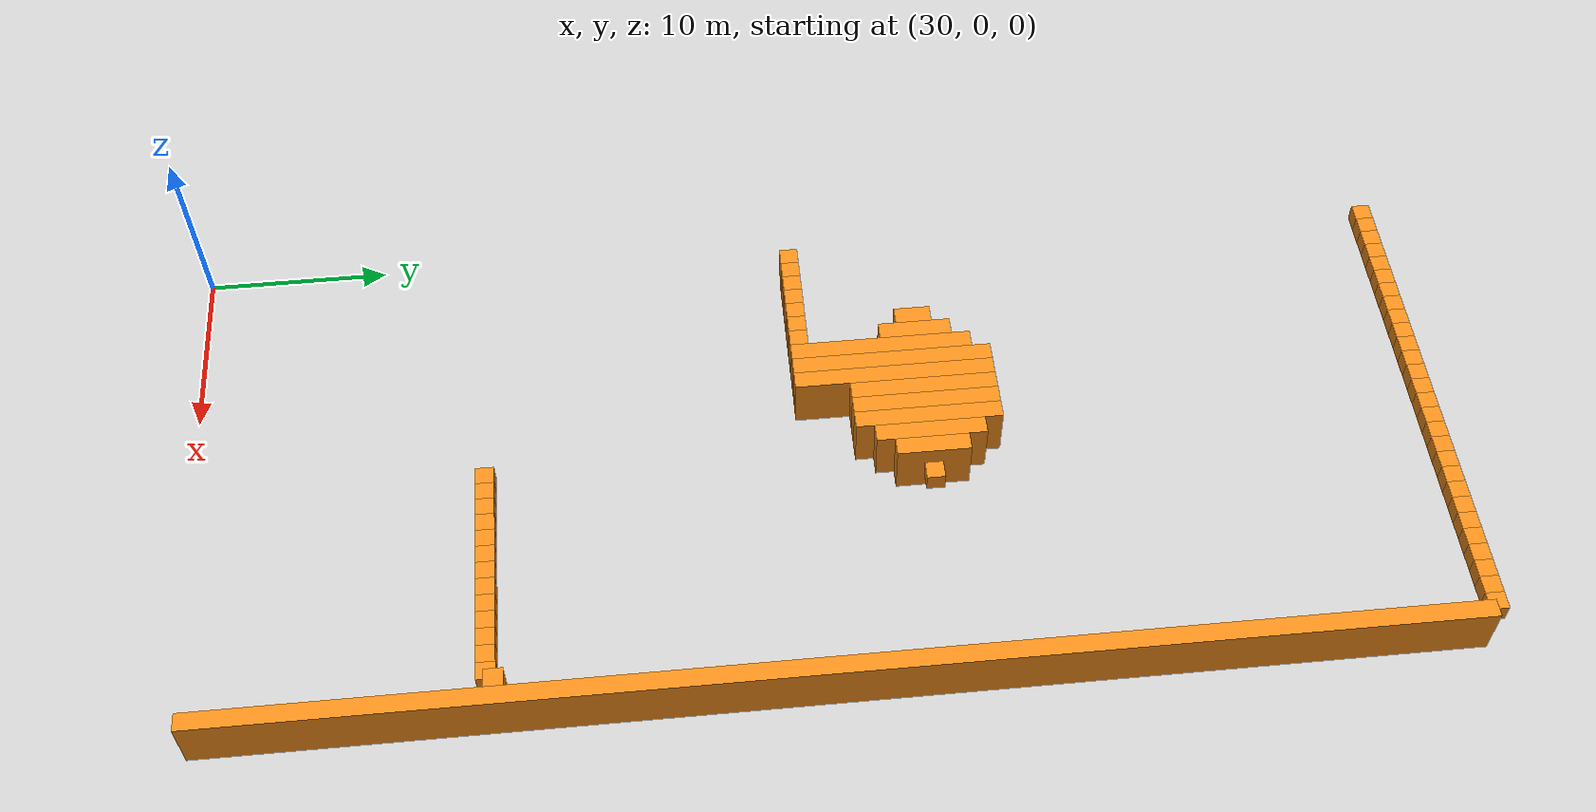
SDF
<sdf version="1.6">
 <world name="default">
  <include><uri>model://ground_plane</uri></include>
  <model name="unit_box_091">
   <pose>32.50    67.50     1.50 0 0 0</pose>
   <static>1</static>
   <link name="link">
    <inertial>
     <mass>5000</mass>
     <inertia><ixx>200</ixx><ixy>0</ixy><ixz>0</ixz><iyy>200</iyy><iyz>0</iyz><izz>200</izz></inertia>
    </inertial>
    <collision name="collision"><geometry><box><size>1 1 1</size></box></geometry></collision>
    <visual name="visual">
     <geometry><box><size>1 1 1</size></box></geometry>
     <material>
      <script><name>Gazebo/Orange</name><uri>file://media/materials/scripts/gazebo.material</uri></script>
     </material>
    </visual>
   </link>
  </model>
  <model name="unit_box_093">
   <pose>33.50    33.50     1.50 0 0 0</pose>
   <static>1</static>
   <link name="link">
    <inertial>
     <mass>5000</mass>
     <inertia><ixx>200</ixx><ixy>0</ixy><ixz>0</ixz><iyy>200</iyy><iyz>0</iyz><izz>200</izz></inertia>
    </inertial>
    <collision name="collision"><geometry><box><size>1 1 3</size></box></geometry></collision>
    <visual name="visual">
     <geometry><box><size>1 1 3</size></box></geometry>
     <material>
      <script><name>Gazebo/Orange</name><uri>file://media/materials/scripts/gazebo.material</uri></script>
     </material>
    </visual>
   </link>
  </model>
  <model name="unit_box_094">
   <pose>33.50    67.50     1.50 0 0 0</pose>
   <static>1</static>
   <link name="link">
    <inertial>
     <mass>5000</mass>
     <inertia><ixx>200</ixx><ixy>0</ixy><ixz>0</ixz><iyy>200</iyy><iyz>0</iyz><izz>200</izz></inertia>
    </inertial>
    <collision name="collision"><geometry><box><size>1 1 1</size></box></geometry></collision>
    <visual name="visual">
     <geometry><box><size>1 1 1</size></box></geometry>
     <material>
      <script><name>Gazebo/Orange</name><uri>file://media/materials/scripts/gazebo.material</uri></script>
     </material>
    </visual>
   </link>
  </model>
  <model name="unit_box_096">
   <pose>34.50    33.50     1.50 0 0 0</pose>
   <static>1</static>
   <link name="link">
    <inertial>
     <mass>5000</mass>
     <inertia><ixx>200</ixx><ixy>0</ixy><ixz>0</ixz><iyy>200</iyy><iyz>0</iyz><izz>200</izz></inertia>
    </inertial>
    <collision name="collision"><geometry><box><size>1 1 3</size></box></geometry></collision>
    <visual name="visual">
     <geometry><box><size>1 1 3</size></box></geometry>
     <material>
      <script><name>Gazebo/Orange</name><uri>file://media/materials/scripts/gazebo.material</uri></script>
     </material>
    </visual>
   </link>
  </model>
  <model name="unit_box_097">
   <pose>34.50    67.50     1.50 0 0 0</pose>
   <static>1</static>
   <link name="link">
    <inertial>
     <mass>5000</mass>
     <inertia><ixx>200</ixx><ixy>0</ixy><ixz>0</ixz><iyy>200</iyy><iyz>0</iyz><izz>200</izz></inertia>
    </inertial>
    <collision name="collision"><geometry><box><size>1 1 1</size></box></geometry></collision>
    <visual name="visual">
     <geometry><box><size>1 1 1</size></box></geometry>
     <material>
      <script><name>Gazebo/Orange</name><uri>file://media/materials/scripts/gazebo.material</uri></script>
     </material>
    </visual>
   </link>
  </model>
  <model name="unit_box_099">
   <pose>35.50    33.50     1.50 0 0 0</pose>
   <static>1</static>
   <link name="link">
    <inertial>
     <mass>5000</mass>
     <inertia><ixx>200</ixx><ixy>0</ixy><ixz>0</ixz><iyy>200</iyy><iyz>0</iyz><izz>200</izz></inertia>
    </inertial>
    <collision name="collision"><geometry><box><size>1 1 3</size></box></geometry></collision>
    <visual name="visual">
     <geometry><box><size>1 1 3</size></box></geometry>
     <material>
      <script><name>Gazebo/Orange</name><uri>file://media/materials/scripts/gazebo.material</uri></script>
     </material>
    </visual>
   </link>
  </model>
  <model name="unit_box_100">
   <pose>35.50    67.50     1.50 0 0 0</pose>
   <static>1</static>
   <link name="link">
    <inertial>
     <mass>5000</mass>
     <inertia><ixx>200</ixx><ixy>0</ixy><ixz>0</ixz><iyy>200</iyy><iyz>0</iyz><izz>200</izz></inertia>
    </inertial>
    <collision name="collision"><geometry><box><size>1 1 1</size></box></geometry></collision>
    <visual name="visual">
     <geometry><box><size>1 1 1</size></box></geometry>
     <material>
      <script><name>Gazebo/Orange</name><uri>file://media/materials/scripts/gazebo.material</uri></script>
     </material>
    </visual>
   </link>
  </model>
  <model name="unit_box_102">
   <pose>36.50    33.50     1.50 0 0 0</pose>
   <static>1</static>
   <link name="link">
    <inertial>
     <mass>5000</mass>
     <inertia><ixx>200</ixx><ixy>0</ixy><ixz>0</ixz><iyy>200</iyy><iyz>0</iyz><izz>200</izz></inertia>
    </inertial>
    <collision name="collision"><geometry><box><size>1 1 3</size></box></geometry></collision>
    <visual name="visual">
     <geometry><box><size>1 1 3</size></box></geometry>
     <material>
      <script><name>Gazebo/Orange</name><uri>file://media/materials/scripts/gazebo.material</uri></script>
     </material>
    </visual>
   </link>
  </model>
  <model name="unit_box_103">
   <pose>36.50    67.50     1.50 0 0 0</pose>
   <static>1</static>
   <link name="link">
    <inertial>
     <mass>5000</mass>
     <inertia><ixx>200</ixx><ixy>0</ixy><ixz>0</ixz><iyy>200</iyy><iyz>0</iyz><izz>200</izz></inertia>
    </inertial>
    <collision name="collision"><geometry><box><size>1 1 1</size></box></geometry></collision>
    <visual name="visual">
     <geometry><box><size>1 1 1</size></box></geometry>
     <material>
      <script><name>Gazebo/Orange</name><uri>file://media/materials/scripts/gazebo.material</uri></script>
     </material>
    </visual>
   </link>
  </model>
  <model name="unit_box_105">
   <pose>37.50    33.50     1.50 0 0 0</pose>
   <static>1</static>
   <link name="link">
    <inertial>
     <mass>5000</mass>
     <inertia><ixx>200</ixx><ixy>0</ixy><ixz>0</ixz><iyy>200</iyy><iyz>0</iyz><izz>200</izz></inertia>
    </inertial>
    <collision name="collision"><geometry><box><size>1 1 3</size></box></geometry></collision>
    <visual name="visual">
     <geometry><box><size>1 1 3</size></box></geometry>
     <material>
      <script><name>Gazebo/Orange</name><uri>file://media/materials/scripts/gazebo.material</uri></script>
     </material>
    </visual>
   </link>
  </model>
  <model name="unit_box_106">
   <pose>37.50    67.50     1.50 0 0 0</pose>
   <static>1</static>
   <link name="link">
    <inertial>
     <mass>5000</mass>
     <inertia><ixx>200</ixx><ixy>0</ixy><ixz>0</ixz><iyy>200</iyy><iyz>0</iyz><izz>200</izz></inertia>
    </inertial>
    <collision name="collision"><geometry><box><size>1 1 1</size></box></geometry></collision>
    <visual name="visual">
     <geometry><box><size>1 1 1</size></box></geometry>
     <material>
      <script><name>Gazebo/Orange</name><uri>file://media/materials/scripts/gazebo.material</uri></script>
     </material>
    </visual>
   </link>
  </model>
  <model name="unit_box_108">
   <pose>38.50    33.50     1.50 0 0 0</pose>
   <static>1</static>
   <link name="link">
    <inertial>
     <mass>5000</mass>
     <inertia><ixx>200</ixx><ixy>0</ixy><ixz>0</ixz><iyy>200</iyy><iyz>0</iyz><izz>200</izz></inertia>
    </inertial>
    <collision name="collision"><geometry><box><size>1 1 3</size></box></geometry></collision>
    <visual name="visual">
     <geometry><box><size>1 1 3</size></box></geometry>
     <material>
      <script><name>Gazebo/Orange</name><uri>file://media/materials/scripts/gazebo.material</uri></script>
     </material>
    </visual>
   </link>
  </model>
  <model name="unit_box_109">
   <pose>38.50    40.00     1.50 0 0 0</pose>
   <static>1</static>
   <link name="link">
    <inertial>
     <mass>5000</mass>
     <inertia><ixx>200</ixx><ixy>0</ixy><ixz>0</ixz><iyy>200</iyy><iyz>0</iyz><izz>200</izz></inertia>
    </inertial>
    <collision name="collision"><geometry><box><size>1 2 3</size></box></geometry></collision>
    <visual name="visual">
     <geometry><box><size>1 2 3</size></box></geometry>
     <material>
      <script><name>Gazebo/Orange</name><uri>file://media/materials/scripts/gazebo.material</uri></script>
     </material>
    </visual>
   </link>
  </model>
  <model name="unit_box_110">
   <pose>38.50    67.50     1.50 0 0 0</pose>
   <static>1</static>
   <link name="link">
    <inertial>
     <mass>5000</mass>
     <inertia><ixx>200</ixx><ixy>0</ixy><ixz>0</ixz><iyy>200</iyy><iyz>0</iyz><izz>200</izz></inertia>
    </inertial>
    <collision name="collision"><geometry><box><size>1 1 1</size></box></geometry></collision>
    <visual name="visual">
     <geometry><box><size>1 1 1</size></box></geometry>
     <material>
      <script><name>Gazebo/Orange</name><uri>file://media/materials/scripts/gazebo.material</uri></script>
     </material>
    </visual>
   </link>
  </model>
  <model name="unit_box_112">
   <pose>39.50    33.50     1.50 0 0 0</pose>
   <static>1</static>
   <link name="link">
    <inertial>
     <mass>5000</mass>
     <inertia><ixx>200</ixx><ixy>0</ixy><ixz>0</ixz><iyy>200</iyy><iyz>0</iyz><izz>200</izz></inertia>
    </inertial>
    <collision name="collision"><geometry><box><size>1 1 3</size></box></geometry></collision>
    <visual name="visual">
     <geometry><box><size>1 1 3</size></box></geometry>
     <material>
      <script><name>Gazebo/Orange</name><uri>file://media/materials/scripts/gazebo.material</uri></script>
     </material>
    </visual>
   </link>
  </model>
  <model name="unit_box_113">
   <pose>39.50    40.00     1.50 0 0 0</pose>
   <static>1</static>
   <link name="link">
    <inertial>
     <mass>5000</mass>
     <inertia><ixx>200</ixx><ixy>0</ixy><ixz>0</ixz><iyy>200</iyy><iyz>0</iyz><izz>200</izz></inertia>
    </inertial>
    <collision name="collision"><geometry><box><size>1 4 3</size></box></geometry></collision>
    <visual name="visual">
     <geometry><box><size>1 4 3</size></box></geometry>
     <material>
      <script><name>Gazebo/Orange</name><uri>file://media/materials/scripts/gazebo.material</uri></script>
     </material>
    </visual>
   </link>
  </model>
  <model name="unit_box_114">
   <pose>39.50    67.50     1.50 0 0 0</pose>
   <static>1</static>
   <link name="link">
    <inertial>
     <mass>5000</mass>
     <inertia><ixx>200</ixx><ixy>0</ixy><ixz>0</ixz><iyy>200</iyy><iyz>0</iyz><izz>200</izz></inertia>
    </inertial>
    <collision name="collision"><geometry><box><size>1 1 1</size></box></geometry></collision>
    <visual name="visual">
     <geometry><box><size>1 1 1</size></box></geometry>
     <material>
      <script><name>Gazebo/Orange</name><uri>file://media/materials/scripts/gazebo.material</uri></script>
     </material>
    </visual>
   </link>
  </model>
  <model name="unit_box_116">
   <pose>40.50    38.00     1.50 0 0 0</pose>
   <static>1</static>
   <link name="link">
    <inertial>
     <mass>5000</mass>
     <inertia><ixx>200</ixx><ixy>0</ixy><ixz>0</ixz><iyy>200</iyy><iyz>0</iyz><izz>200</izz></inertia>
    </inertial>
    <collision name="collision"><geometry><box><size>1 10 3</size></box></geometry></collision>
    <visual name="visual">
     <geometry><box><size>1 10 3</size></box></geometry>
     <material>
      <script><name>Gazebo/Orange</name><uri>file://media/materials/scripts/gazebo.material</uri></script>
     </material>
    </visual>
   </link>
  </model>
  <model name="unit_box_117">
   <pose>40.50    67.50     1.50 0 0 0</pose>
   <static>1</static>
   <link name="link">
    <inertial>
     <mass>5000</mass>
     <inertia><ixx>200</ixx><ixy>0</ixy><ixz>0</ixz><iyy>200</iyy><iyz>0</iyz><izz>200</izz></inertia>
    </inertial>
    <collision name="collision"><geometry><box><size>1 1 1</size></box></geometry></collision>
    <visual name="visual">
     <geometry><box><size>1 1 1</size></box></geometry>
     <material>
      <script><name>Gazebo/Orange</name><uri>file://media/materials/scripts/gazebo.material</uri></script>
     </material>
    </visual>
   </link>
  </model>
  <model name="unit_box_119">
   <pose>41.50    38.50     1.50 0 0 0</pose>
   <static>1</static>
   <link name="link">
    <inertial>
     <mass>5000</mass>
     <inertia><ixx>200</ixx><ixy>0</ixy><ixz>0</ixz><iyy>200</iyy><iyz>0</iyz><izz>200</izz></inertia>
    </inertial>
    <collision name="collision"><geometry><box><size>1 11 3</size></box></geometry></collision>
    <visual name="visual">
     <geometry><box><size>1 11 3</size></box></geometry>
     <material>
      <script><name>Gazebo/Orange</name><uri>file://media/materials/scripts/gazebo.material</uri></script>
     </material>
    </visual>
   </link>
  </model>
  <model name="unit_box_120">
   <pose>41.50    67.50     1.50 0 0 0</pose>
   <static>1</static>
   <link name="link">
    <inertial>
     <mass>5000</mass>
     <inertia><ixx>200</ixx><ixy>0</ixy><ixz>0</ixz><iyy>200</iyy><iyz>0</iyz><izz>200</izz></inertia>
    </inertial>
    <collision name="collision"><geometry><box><size>1 1 1</size></box></geometry></collision>
    <visual name="visual">
     <geometry><box><size>1 1 1</size></box></geometry>
     <material>
      <script><name>Gazebo/Orange</name><uri>file://media/materials/scripts/gazebo.material</uri></script>
     </material>
    </visual>
   </link>
  </model>
  <model name="unit_box_123">
   <pose>42.50    38.50     1.50 0 0 0</pose>
   <static>1</static>
   <link name="link">
    <inertial>
     <mass>5000</mass>
     <inertia><ixx>200</ixx><ixy>0</ixy><ixz>0</ixz><iyy>200</iyy><iyz>0</iyz><izz>200</izz></inertia>
    </inertial>
    <collision name="collision"><geometry><box><size>1 11 3</size></box></geometry></collision>
    <visual name="visual">
     <geometry><box><size>1 11 3</size></box></geometry>
     <material>
      <script><name>Gazebo/Orange</name><uri>file://media/materials/scripts/gazebo.material</uri></script>
     </material>
    </visual>
   </link>
  </model>
  <model name="unit_box_124">
   <pose>42.50    67.50     1.50 0 0 0</pose>
   <static>1</static>
   <link name="link">
    <inertial>
     <mass>5000</mass>
     <inertia><ixx>200</ixx><ixy>0</ixy><ixz>0</ixz><iyy>200</iyy><iyz>0</iyz><izz>200</izz></inertia>
    </inertial>
    <collision name="collision"><geometry><box><size>1 1 1</size></box></geometry></collision>
    <visual name="visual">
     <geometry><box><size>1 1 1</size></box></geometry>
     <material>
      <script><name>Gazebo/Orange</name><uri>file://media/materials/scripts/gazebo.material</uri></script>
     </material>
    </visual>
   </link>
  </model>
  <model name="unit_box_127">
   <pose>43.50    40.00     1.50 0 0 0</pose>
   <static>1</static>
   <link name="link">
    <inertial>
     <mass>5000</mass>
     <inertia><ixx>200</ixx><ixy>0</ixy><ixz>0</ixz><iyy>200</iyy><iyz>0</iyz><izz>200</izz></inertia>
    </inertial>
    <collision name="collision"><geometry><box><size>1 8 3</size></box></geometry></collision>
    <visual name="visual">
     <geometry><box><size>1 8 3</size></box></geometry>
     <material>
      <script><name>Gazebo/Orange</name><uri>file://media/materials/scripts/gazebo.material</uri></script>
     </material>
    </visual>
   </link>
  </model>
  <model name="unit_box_128">
   <pose>43.50    67.50     1.50 0 0 0</pose>
   <static>1</static>
   <link name="link">
    <inertial>
     <mass>5000</mass>
     <inertia><ixx>200</ixx><ixy>0</ixy><ixz>0</ixz><iyy>200</iyy><iyz>0</iyz><izz>200</izz></inertia>
    </inertial>
    <collision name="collision"><geometry><box><size>1 1 1</size></box></geometry></collision>
    <visual name="visual">
     <geometry><box><size>1 1 1</size></box></geometry>
     <material>
      <script><name>Gazebo/Orange</name><uri>file://media/materials/scripts/gazebo.material</uri></script>
     </material>
    </visual>
   </link>
  </model>
  <model name="unit_box_131">
   <pose>44.50    40.00     1.50 0 0 0</pose>
   <static>1</static>
   <link name="link">
    <inertial>
     <mass>5000</mass>
     <inertia><ixx>200</ixx><ixy>0</ixy><ixz>0</ixz><iyy>200</iyy><iyz>0</iyz><izz>200</izz></inertia>
    </inertial>
    <collision name="collision"><geometry><box><size>1 8 3</size></box></geometry></collision>
    <visual name="visual">
     <geometry><box><size>1 8 3</size></box></geometry>
     <material>
      <script><name>Gazebo/Orange</name><uri>file://media/materials/scripts/gazebo.material</uri></script>
     </material>
    </visual>
   </link>
  </model>
  <model name="unit_box_132">
   <pose>44.50    67.50     1.50 0 0 0</pose>
   <static>1</static>
   <link name="link">
    <inertial>
     <mass>5000</mass>
     <inertia><ixx>200</ixx><ixy>0</ixy><ixz>0</ixz><iyy>200</iyy><iyz>0</iyz><izz>200</izz></inertia>
    </inertial>
    <collision name="collision"><geometry><box><size>1 1 1</size></box></geometry></collision>
    <visual name="visual">
     <geometry><box><size>1 1 1</size></box></geometry>
     <material>
      <script><name>Gazebo/Orange</name><uri>file://media/materials/scripts/gazebo.material</uri></script>
     </material>
    </visual>
   </link>
  </model>
  <model name="unit_box_135">
   <pose>45.50    40.00     1.50 0 0 0</pose>
   <static>1</static>
   <link name="link">
    <inertial>
     <mass>5000</mass>
     <inertia><ixx>200</ixx><ixy>0</ixy><ixz>0</ixz><iyy>200</iyy><iyz>0</iyz><izz>200</izz></inertia>
    </inertial>
    <collision name="collision"><geometry><box><size>1 8 3</size></box></geometry></collision>
    <visual name="visual">
     <geometry><box><size>1 8 3</size></box></geometry>
     <material>
      <script><name>Gazebo/Orange</name><uri>file://media/materials/scripts/gazebo.material</uri></script>
     </material>
    </visual>
   </link>
  </model>
  <model name="unit_box_136">
   <pose>45.50    67.50     1.50 0 0 0</pose>
   <static>1</static>
   <link name="link">
    <inertial>
     <mass>5000</mass>
     <inertia><ixx>200</ixx><ixy>0</ixy><ixz>0</ixz><iyy>200</iyy><iyz>0</iyz><izz>200</izz></inertia>
    </inertial>
    <collision name="collision"><geometry><box><size>1 1 1</size></box></geometry></collision>
    <visual name="visual">
     <geometry><box><size>1 1 1</size></box></geometry>
     <material>
      <script><name>Gazebo/Orange</name><uri>file://media/materials/scripts/gazebo.material</uri></script>
     </material>
    </visual>
   </link>
  </model>
  <model name="unit_box_138">
   <pose>46.50    16.00     1.50 0 0 0</pose>
   <static>1</static>
   <link name="link">
    <inertial>
     <mass>5000</mass>
     <inertia><ixx>200</ixx><ixy>0</ixy><ixz>0</ixz><iyy>200</iyy><iyz>0</iyz><izz>200</izz></inertia>
    </inertial>
    <collision name="collision"><geometry><box><size>1 1 1</size></box></geometry></collision>
    <visual name="visual">
     <geometry><box><size>1 1 1</size></box></geometry>
     <material>
      <script><name>Gazebo/Orange</name><uri>file://media/materials/scripts/gazebo.material</uri></script>
     </material>
    </visual>
   </link>
  </model>
  <model name="unit_box_139">
   <pose>46.50    40.00     1.50 0 0 0</pose>
   <static>1</static>
   <link name="link">
    <inertial>
     <mass>5000</mass>
     <inertia><ixx>200</ixx><ixy>0</ixy><ixz>0</ixz><iyy>200</iyy><iyz>0</iyz><izz>200</izz></inertia>
    </inertial>
    <collision name="collision"><geometry><box><size>1 6 3</size></box></geometry></collision>
    <visual name="visual">
     <geometry><box><size>1 6 3</size></box></geometry>
     <material>
      <script><name>Gazebo/Orange</name><uri>file://media/materials/scripts/gazebo.material</uri></script>
     </material>
    </visual>
   </link>
  </model>
  <model name="unit_box_140">
   <pose>46.50    67.50     1.50 0 0 0</pose>
   <static>1</static>
   <link name="link">
    <inertial>
     <mass>5000</mass>
     <inertia><ixx>200</ixx><ixy>0</ixy><ixz>0</ixz><iyy>200</iyy><iyz>0</iyz><izz>200</izz></inertia>
    </inertial>
    <collision name="collision"><geometry><box><size>1 1 1</size></box></geometry></collision>
    <visual name="visual">
     <geometry><box><size>1 1 1</size></box></geometry>
     <material>
      <script><name>Gazebo/Orange</name><uri>file://media/materials/scripts/gazebo.material</uri></script>
     </material>
    </visual>
   </link>
  </model>
  <model name="unit_box_142">
   <pose>47.50    16.00     1.50 0 0 0</pose>
   <static>1</static>
   <link name="link">
    <inertial>
     <mass>5000</mass>
     <inertia><ixx>200</ixx><ixy>0</ixy><ixz>0</ixz><iyy>200</iyy><iyz>0</iyz><izz>200</izz></inertia>
    </inertial>
    <collision name="collision"><geometry><box><size>1 1 1</size></box></geometry></collision>
    <visual name="visual">
     <geometry><box><size>1 1 1</size></box></geometry>
     <material>
      <script><name>Gazebo/Orange</name><uri>file://media/materials/scripts/gazebo.material</uri></script>
     </material>
    </visual>
   </link>
  </model>
  <model name="unit_box_143">
   <pose>47.50    40.00     1.50 0 0 0</pose>
   <static>1</static>
   <link name="link">
    <inertial>
     <mass>5000</mass>
     <inertia><ixx>200</ixx><ixy>0</ixy><ixz>0</ixz><iyy>200</iyy><iyz>0</iyz><izz>200</izz></inertia>
    </inertial>
    <collision name="collision"><geometry><box><size>1 4 3</size></box></geometry></collision>
    <visual name="visual">
     <geometry><box><size>1 4 3</size></box></geometry>
     <material>
      <script><name>Gazebo/Orange</name><uri>file://media/materials/scripts/gazebo.material</uri></script>
     </material>
    </visual>
   </link>
  </model>
  <model name="unit_box_144">
   <pose>47.50    67.50     1.50 0 0 0</pose>
   <static>1</static>
   <link name="link">
    <inertial>
     <mass>5000</mass>
     <inertia><ixx>200</ixx><ixy>0</ixy><ixz>0</ixz><iyy>200</iyy><iyz>0</iyz><izz>200</izz></inertia>
    </inertial>
    <collision name="collision"><geometry><box><size>1 1 1</size></box></geometry></collision>
    <visual name="visual">
     <geometry><box><size>1 1 1</size></box></geometry>
     <material>
      <script><name>Gazebo/Orange</name><uri>file://media/materials/scripts/gazebo.material</uri></script>
     </material>
    </visual>
   </link>
  </model>
  <model name="unit_box_146">
   <pose>48.50    16.00     1.50 0 0 0</pose>
   <static>1</static>
   <link name="link">
    <inertial>
     <mass>5000</mass>
     <inertia><ixx>200</ixx><ixy>0</ixy><ixz>0</ixz><iyy>200</iyy><iyz>0</iyz><izz>200</izz></inertia>
    </inertial>
    <collision name="collision"><geometry><box><size>1 1 1</size></box></geometry></collision>
    <visual name="visual">
     <geometry><box><size>1 1 1</size></box></geometry>
     <material>
      <script><name>Gazebo/Orange</name><uri>file://media/materials/scripts/gazebo.material</uri></script>
     </material>
    </visual>
   </link>
  </model>
  <model name="unit_box_147">
   <pose>48.50    40.00     1.50 0 0 0</pose>
   <static>1</static>
   <link name="link">
    <inertial>
     <mass>5000</mass>
     <inertia><ixx>200</ixx><ixy>0</ixy><ixz>0</ixz><iyy>200</iyy><iyz>0</iyz><izz>200</izz></inertia>
    </inertial>
    <collision name="collision"><geometry><box><size>1 1 1</size></box></geometry></collision>
    <visual name="visual">
     <geometry><box><size>1 1 1</size></box></geometry>
     <material>
      <script><name>Gazebo/Orange</name><uri>file://media/materials/scripts/gazebo.material</uri></script>
     </material>
    </visual>
   </link>
  </model>
  <model name="unit_box_148">
   <pose>48.50    67.50     1.50 0 0 0</pose>
   <static>1</static>
   <link name="link">
    <inertial>
     <mass>5000</mass>
     <inertia><ixx>200</ixx><ixy>0</ixy><ixz>0</ixz><iyy>200</iyy><iyz>0</iyz><izz>200</izz></inertia>
    </inertial>
    <collision name="collision"><geometry><box><size>1 1 1</size></box></geometry></collision>
    <visual name="visual">
     <geometry><box><size>1 1 1</size></box></geometry>
     <material>
      <script><name>Gazebo/Orange</name><uri>file://media/materials/scripts/gazebo.material</uri></script>
     </material>
    </visual>
   </link>
  </model>
  <model name="unit_box_150">
   <pose>49.50    16.00     1.50 0 0 0</pose>
   <static>1</static>
   <link name="link">
    <inertial>
     <mass>5000</mass>
     <inertia><ixx>200</ixx><ixy>0</ixy><ixz>0</ixz><iyy>200</iyy><iyz>0</iyz><izz>200</izz></inertia>
    </inertial>
    <collision name="collision"><geometry><box><size>1 1 1</size></box></geometry></collision>
    <visual name="visual">
     <geometry><box><size>1 1 1</size></box></geometry>
     <material>
      <script><name>Gazebo/Orange</name><uri>file://media/materials/scripts/gazebo.material</uri></script>
     </material>
    </visual>
   </link>
  </model>
  <model name="unit_box_151">
   <pose>49.50    67.50     1.50 0 0 0</pose>
   <static>1</static>
   <link name="link">
    <inertial>
     <mass>5000</mass>
     <inertia><ixx>200</ixx><ixy>0</ixy><ixz>0</ixz><iyy>200</iyy><iyz>0</iyz><izz>200</izz></inertia>
    </inertial>
    <collision name="collision"><geometry><box><size>1 1 1</size></box></geometry></collision>
    <visual name="visual">
     <geometry><box><size>1 1 1</size></box></geometry>
     <material>
      <script><name>Gazebo/Orange</name><uri>file://media/materials/scripts/gazebo.material</uri></script>
     </material>
    </visual>
   </link>
  </model>
  <model name="unit_box_153">
   <pose>50.50    16.00     1.50 0 0 0</pose>
   <static>1</static>
   <link name="link">
    <inertial>
     <mass>5000</mass>
     <inertia><ixx>200</ixx><ixy>0</ixy><ixz>0</ixz><iyy>200</iyy><iyz>0</iyz><izz>200</izz></inertia>
    </inertial>
    <collision name="collision"><geometry><box><size>1 1 1</size></box></geometry></collision>
    <visual name="visual">
     <geometry><box><size>1 1 1</size></box></geometry>
     <material>
      <script><name>Gazebo/Orange</name><uri>file://media/materials/scripts/gazebo.material</uri></script>
     </material>
    </visual>
   </link>
  </model>
  <model name="unit_box_154">
   <pose>50.50    67.50     1.50 0 0 0</pose>
   <static>1</static>
   <link name="link">
    <inertial>
     <mass>5000</mass>
     <inertia><ixx>200</ixx><ixy>0</ixy><ixz>0</ixz><iyy>200</iyy><iyz>0</iyz><izz>200</izz></inertia>
    </inertial>
    <collision name="collision"><geometry><box><size>1 1 1</size></box></geometry></collision>
    <visual name="visual">
     <geometry><box><size>1 1 1</size></box></geometry>
     <material>
      <script><name>Gazebo/Orange</name><uri>file://media/materials/scripts/gazebo.material</uri></script>
     </material>
    </visual>
   </link>
  </model>
  <model name="unit_box_156">
   <pose>51.50    16.00     1.50 0 0 0</pose>
   <static>1</static>
   <link name="link">
    <inertial>
     <mass>5000</mass>
     <inertia><ixx>200</ixx><ixy>0</ixy><ixz>0</ixz><iyy>200</iyy><iyz>0</iyz><izz>200</izz></inertia>
    </inertial>
    <collision name="collision"><geometry><box><size>1 1 1</size></box></geometry></collision>
    <visual name="visual">
     <geometry><box><size>1 1 1</size></box></geometry>
     <material>
      <script><name>Gazebo/Orange</name><uri>file://media/materials/scripts/gazebo.material</uri></script>
     </material>
    </visual>
   </link>
  </model>
  <model name="unit_box_157">
   <pose>51.50    67.50     1.50 0 0 0</pose>
   <static>1</static>
   <link name="link">
    <inertial>
     <mass>5000</mass>
     <inertia><ixx>200</ixx><ixy>0</ixy><ixz>0</ixz><iyy>200</iyy><iyz>0</iyz><izz>200</izz></inertia>
    </inertial>
    <collision name="collision"><geometry><box><size>1 1 1</size></box></geometry></collision>
    <visual name="visual">
     <geometry><box><size>1 1 1</size></box></geometry>
     <material>
      <script><name>Gazebo/Orange</name><uri>file://media/materials/scripts/gazebo.material</uri></script>
     </material>
    </visual>
   </link>
  </model>
  <model name="unit_box_159">
   <pose>52.50    16.00     1.50 0 0 0</pose>
   <static>1</static>
   <link name="link">
    <inertial>
     <mass>5000</mass>
     <inertia><ixx>200</ixx><ixy>0</ixy><ixz>0</ixz><iyy>200</iyy><iyz>0</iyz><izz>200</izz></inertia>
    </inertial>
    <collision name="collision"><geometry><box><size>1 1 1</size></box></geometry></collision>
    <visual name="visual">
     <geometry><box><size>1 1 1</size></box></geometry>
     <material>
      <script><name>Gazebo/Orange</name><uri>file://media/materials/scripts/gazebo.material</uri></script>
     </material>
    </visual>
   </link>
  </model>
  <model name="unit_box_160">
   <pose>52.50    67.50     1.50 0 0 0</pose>
   <static>1</static>
   <link name="link">
    <inertial>
     <mass>5000</mass>
     <inertia><ixx>200</ixx><ixy>0</ixy><ixz>0</ixz><iyy>200</iyy><iyz>0</iyz><izz>200</izz></inertia>
    </inertial>
    <collision name="collision"><geometry><box><size>1 1 1</size></box></geometry></collision>
    <visual name="visual">
     <geometry><box><size>1 1 1</size></box></geometry>
     <material>
      <script><name>Gazebo/Orange</name><uri>file://media/materials/scripts/gazebo.material</uri></script>
     </material>
    </visual>
   </link>
  </model>
  <model name="unit_box_162">
   <pose>53.50    16.00     1.50 0 0 0</pose>
   <static>1</static>
   <link name="link">
    <inertial>
     <mass>5000</mass>
     <inertia><ixx>200</ixx><ixy>0</ixy><ixz>0</ixz><iyy>200</iyy><iyz>0</iyz><izz>200</izz></inertia>
    </inertial>
    <collision name="collision"><geometry><box><size>1 1 1</size></box></geometry></collision>
    <visual name="visual">
     <geometry><box><size>1 1 1</size></box></geometry>
     <material>
      <script><name>Gazebo/Orange</name><uri>file://media/materials/scripts/gazebo.material</uri></script>
     </material>
    </visual>
   </link>
  </model>
  <model name="unit_box_163">
   <pose>53.50    67.50     1.50 0 0 0</pose>
   <static>1</static>
   <link name="link">
    <inertial>
     <mass>5000</mass>
     <inertia><ixx>200</ixx><ixy>0</ixy><ixz>0</ixz><iyy>200</iyy><iyz>0</iyz><izz>200</izz></inertia>
    </inertial>
    <collision name="collision"><geometry><box><size>1 1 1</size></box></geometry></collision>
    <visual name="visual">
     <geometry><box><size>1 1 1</size></box></geometry>
     <material>
      <script><name>Gazebo/Orange</name><uri>file://media/materials/scripts/gazebo.material</uri></script>
     </material>
    </visual>
   </link>
  </model>
  <model name="unit_box_165">
   <pose>54.50    16.00     1.50 0 0 0</pose>
   <static>1</static>
   <link name="link">
    <inertial>
     <mass>5000</mass>
     <inertia><ixx>200</ixx><ixy>0</ixy><ixz>0</ixz><iyy>200</iyy><iyz>0</iyz><izz>200</izz></inertia>
    </inertial>
    <collision name="collision"><geometry><box><size>1 1 1</size></box></geometry></collision>
    <visual name="visual">
     <geometry><box><size>1 1 1</size></box></geometry>
     <material>
      <script><name>Gazebo/Orange</name><uri>file://media/materials/scripts/gazebo.material</uri></script>
     </material>
    </visual>
   </link>
  </model>
  <model name="unit_box_166">
   <pose>54.50    67.50     1.50 0 0 0</pose>
   <static>1</static>
   <link name="link">
    <inertial>
     <mass>5000</mass>
     <inertia><ixx>200</ixx><ixy>0</ixy><ixz>0</ixz><iyy>200</iyy><iyz>0</iyz><izz>200</izz></inertia>
    </inertial>
    <collision name="collision"><geometry><box><size>1 1 1</size></box></geometry></collision>
    <visual name="visual">
     <geometry><box><size>1 1 1</size></box></geometry>
     <material>
      <script><name>Gazebo/Orange</name><uri>file://media/materials/scripts/gazebo.material</uri></script>
     </material>
    </visual>
   </link>
  </model>
  <model name="unit_box_168">
   <pose>55.50    16.00     1.50 0 0 0</pose>
   <static>1</static>
   <link name="link">
    <inertial>
     <mass>5000</mass>
     <inertia><ixx>200</ixx><ixy>0</ixy><ixz>0</ixz><iyy>200</iyy><iyz>0</iyz><izz>200</izz></inertia>
    </inertial>
    <collision name="collision"><geometry><box><size>1 1 1</size></box></geometry></collision>
    <visual name="visual">
     <geometry><box><size>1 1 1</size></box></geometry>
     <material>
      <script><name>Gazebo/Orange</name><uri>file://media/materials/scripts/gazebo.material</uri></script>
     </material>
    </visual>
   </link>
  </model>
  <model name="unit_box_169">
   <pose>55.50    67.50     1.50 0 0 0</pose>
   <static>1</static>
   <link name="link">
    <inertial>
     <mass>5000</mass>
     <inertia><ixx>200</ixx><ixy>0</ixy><ixz>0</ixz><iyy>200</iyy><iyz>0</iyz><izz>200</izz></inertia>
    </inertial>
    <collision name="collision"><geometry><box><size>1 1 1</size></box></geometry></collision>
    <visual name="visual">
     <geometry><box><size>1 1 1</size></box></geometry>
     <material>
      <script><name>Gazebo/Orange</name><uri>file://media/materials/scripts/gazebo.material</uri></script>
     </material>
    </visual>
   </link>
  </model>
  <model name="unit_box_171">
   <pose>56.50    16.00     1.50 0 0 0</pose>
   <static>1</static>
   <link name="link">
    <inertial>
     <mass>5000</mass>
     <inertia><ixx>200</ixx><ixy>0</ixy><ixz>0</ixz><iyy>200</iyy><iyz>0</iyz><izz>200</izz></inertia>
    </inertial>
    <collision name="collision"><geometry><box><size>1 1 1</size></box></geometry></collision>
    <visual name="visual">
     <geometry><box><size>1 1 1</size></box></geometry>
     <material>
      <script><name>Gazebo/Orange</name><uri>file://media/materials/scripts/gazebo.material</uri></script>
     </material>
    </visual>
   </link>
  </model>
  <model name="unit_box_172">
   <pose>56.50    67.50     1.50 0 0 0</pose>
   <static>1</static>
   <link name="link">
    <inertial>
     <mass>5000</mass>
     <inertia><ixx>200</ixx><ixy>0</ixy><ixz>0</ixz><iyy>200</iyy><iyz>0</iyz><izz>200</izz></inertia>
    </inertial>
    <collision name="collision"><geometry><box><size>1 1 1</size></box></geometry></collision>
    <visual name="visual">
     <geometry><box><size>1 1 1</size></box></geometry>
     <material>
      <script><name>Gazebo/Orange</name><uri>file://media/materials/scripts/gazebo.material</uri></script>
     </material>
    </visual>
   </link>
  </model>
  <model name="unit_box_174">
   <pose>57.50    16.00     1.50 0 0 0</pose>
   <static>1</static>
   <link name="link">
    <inertial>
     <mass>5000</mass>
     <inertia><ixx>200</ixx><ixy>0</ixy><ixz>0</ixz><iyy>200</iyy><iyz>0</iyz><izz>200</izz></inertia>
    </inertial>
    <collision name="collision"><geometry><box><size>1 1 1</size></box></geometry></collision>
    <visual name="visual">
     <geometry><box><size>1 1 1</size></box></geometry>
     <material>
      <script><name>Gazebo/Orange</name><uri>file://media/materials/scripts/gazebo.material</uri></script>
     </material>
    </visual>
   </link>
  </model>
  <model name="unit_box_175">
   <pose>57.50    67.50     1.50 0 0 0</pose>
   <static>1</static>
   <link name="link">
    <inertial>
     <mass>5000</mass>
     <inertia><ixx>200</ixx><ixy>0</ixy><ixz>0</ixz><iyy>200</iyy><iyz>0</iyz><izz>200</izz></inertia>
    </inertial>
    <collision name="collision"><geometry><box><size>1 1 1</size></box></geometry></collision>
    <visual name="visual">
     <geometry><box><size>1 1 1</size></box></geometry>
     <material>
      <script><name>Gazebo/Orange</name><uri>file://media/materials/scripts/gazebo.material</uri></script>
     </material>
    </visual>
   </link>
  </model>
  <model name="unit_box_177">
   <pose>58.50    16.00     1.50 0 0 0</pose>
   <static>1</static>
   <link name="link">
    <inertial>
     <mass>5000</mass>
     <inertia><ixx>200</ixx><ixy>0</ixy><ixz>0</ixz><iyy>200</iyy><iyz>0</iyz><izz>200</izz></inertia>
    </inertial>
    <collision name="collision"><geometry><box><size>1 1 1</size></box></geometry></collision>
    <visual name="visual">
     <geometry><box><size>1 1 1</size></box></geometry>
     <material>
      <script><name>Gazebo/Orange</name><uri>file://media/materials/scripts/gazebo.material</uri></script>
     </material>
    </visual>
   </link>
  </model>
  <model name="unit_box_178">
   <pose>58.50    67.50     1.50 0 0 0</pose>
   <static>1</static>
   <link name="link">
    <inertial>
     <mass>5000</mass>
     <inertia><ixx>200</ixx><ixy>0</ixy><ixz>0</ixz><iyy>200</iyy><iyz>0</iyz><izz>200</izz></inertia>
    </inertial>
    <collision name="collision"><geometry><box><size>1 1 1</size></box></geometry></collision>
    <visual name="visual">
     <geometry><box><size>1 1 1</size></box></geometry>
     <material>
      <script><name>Gazebo/Orange</name><uri>file://media/materials/scripts/gazebo.material</uri></script>
     </material>
    </visual>
   </link>
  </model>
  <model name="unit_box_180">
   <pose>59.50    16.50     1.50 0 0 0</pose>
   <static>1</static>
   <link name="link">
    <inertial>
     <mass>5000</mass>
     <inertia><ixx>200</ixx><ixy>0</ixy><ixz>0</ixz><iyy>200</iyy><iyz>0</iyz><izz>200</izz></inertia>
    </inertial>
    <collision name="collision"><geometry><box><size>1 1 3</size></box></geometry></collision>
    <visual name="visual">
     <geometry><box><size>1 1 3</size></box></geometry>
     <material>
      <script><name>Gazebo/Orange</name><uri>file://media/materials/scripts/gazebo.material</uri></script>
     </material>
    </visual>
   </link>
  </model>
  <model name="unit_box_181">
   <pose>59.50    67.50     1.50 0 0 0</pose>
   <static>1</static>
   <link name="link">
    <inertial>
     <mass>5000</mass>
     <inertia><ixx>200</ixx><ixy>0</ixy><ixz>0</ixz><iyy>200</iyy><iyz>0</iyz><izz>200</izz></inertia>
    </inertial>
    <collision name="collision"><geometry><box><size>1 1 1</size></box></geometry></collision>
    <visual name="visual">
     <geometry><box><size>1 1 1</size></box></geometry>
     <material>
      <script><name>Gazebo/Orange</name><uri>file://media/materials/scripts/gazebo.material</uri></script>
     </material>
    </visual>
   </link>
  </model>
  <model name="unit_box_182">
   <pose>60.50    34.00     1.50 0 0 0</pose>
   <static>1</static>
   <link name="link">
    <inertial>
     <mass>5000</mass>
     <inertia><ixx>200</ixx><ixy>0</ixy><ixz>0</ixz><iyy>200</iyy><iyz>0</iyz><izz>200</izz></inertia>
    </inertial>
    <collision name="collision"><geometry><box><size>1 66 3</size></box></geometry></collision>
    <visual name="visual">
     <geometry><box><size>1 66 3</size></box></geometry>
     <material>
      <script><name>Gazebo/Orange</name><uri>file://media/materials/scripts/gazebo.material</uri></script>
     </material>
    </visual>
   </link>
  </model>
 </world>
</sdf>
